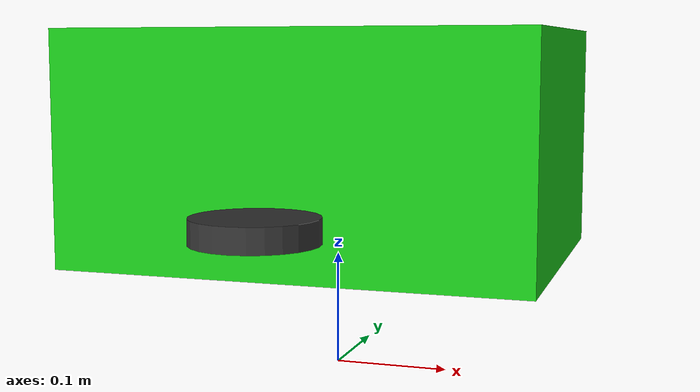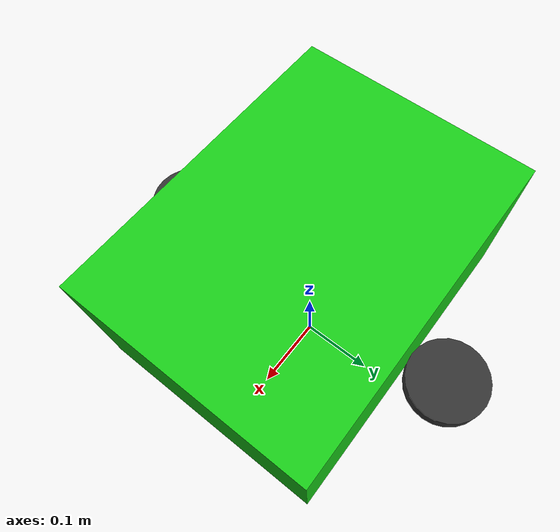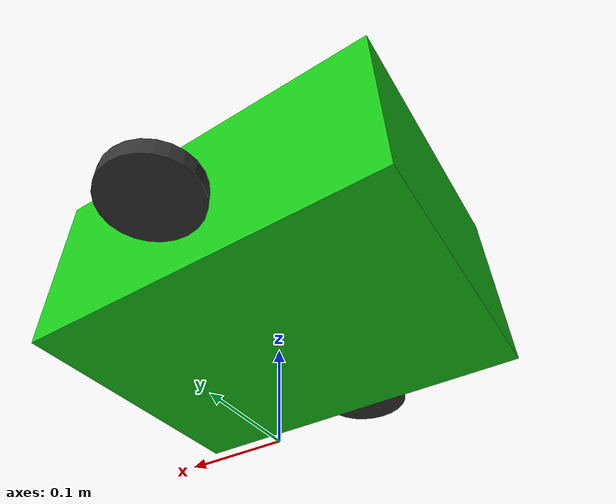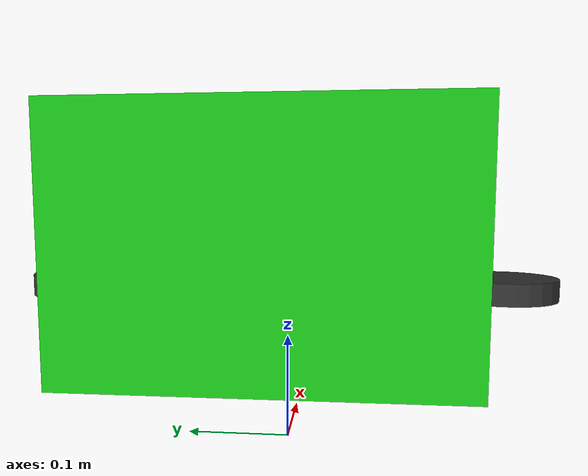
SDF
<?xml version="1.0" ?>
<sdf version="1.7">
  <model name="diffdrive_robot">
    <pose>0 0 0.1 0 0 0</pose>
    <link name="chassis">
      <pose>0 0 0.1 0 0 0</pose>
      <inertial>
        <mass>5.0</mass>
      </inertial>
      <collision name="collision">
        <geometry>
          <box><size>0.4 0.3 0.2</size></box>
        </geometry>
      </collision>
      <visual name="visual">
        <geometry>
          <box><size>0.4 0.3 0.2</size></box>
        </geometry>
        <material>
          <ambient>0.1 0.8 0.1 1</ambient>
        </material>
      </visual>
    </link>

    <!-- Left wheel -->
    <link name="left_wheel">
      <pose>0 0.2 0.05 0 0 0</pose>
      <collision name="collision">
        <geometry><cylinder><radius>0.05</radius><length>0.02</length></cylinder></geometry>
      </collision>
      <visual name="visual">
        <geometry><cylinder><radius>0.05</radius><length>0.02</length></cylinder></geometry>
        <material><ambient>0.2 0.2 0.2 1</ambient></material>
      </visual>
    </link>

    <!-- Right wheel -->
    <link name="right_wheel">
      <pose>0 -0.2 0.05 0 0 0</pose>
      <collision name="collision">
        <geometry><cylinder><radius>0.05</radius><length>0.02</length></cylinder></geometry>
      </collision>
      <visual name="visual">
        <geometry><cylinder><radius>0.05</radius><length>0.02</length></cylinder></geometry>
        <material><ambient>0.2 0.2 0.2 1</ambient></material>
      </visual>
    </link>

    <!-- Joints -->
    <joint name="left_wheel_joint" type="revolute">
      <parent>chassis</parent>
      <child>left_wheel</child>
      <axis>
        <xyz>0 1 0</xyz>
        <limit><lower>-1e16</lower><upper>1e16</upper></limit>
      </axis>
    </joint>

    <joint name="right_wheel_joint" type="revolute">
      <parent>chassis</parent>
      <child>right_wheel</child>
      <axis>
        <xyz>0 1 0</xyz>
        <limit><lower>-1e16</lower><upper>1e16</upper></limit>
      </axis>
    </joint>

    <!-- DiffDrive plugin -->
    <plugin filename="gz-sim-diff-drive-system"
            name="gz::sim::systems::DiffDrive">
      <left_joints>left_wheel_joint</left_joints>
      <right_joints>right_wheel_joint</right_joints>
      <wheel_separation>0.4</wheel_separation>
      <wheel_radius>0.05</wheel_radius>
      <topic>/model/diffdrive_robot/cmd_vel</topic>
    </plugin>
  </model>
</sdf>
